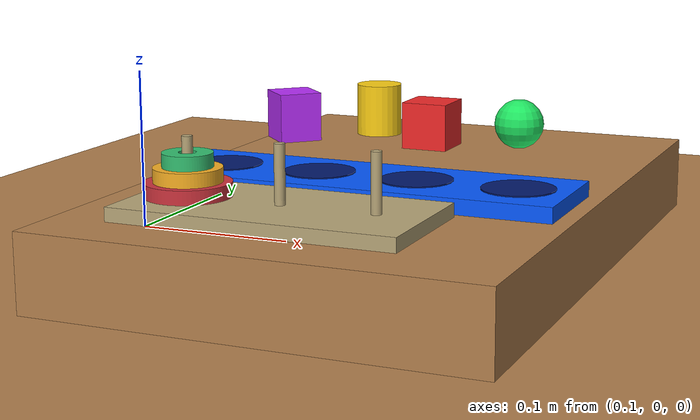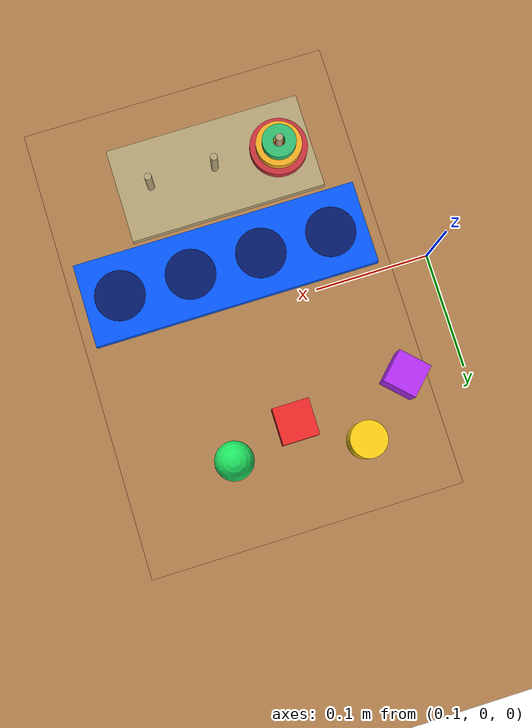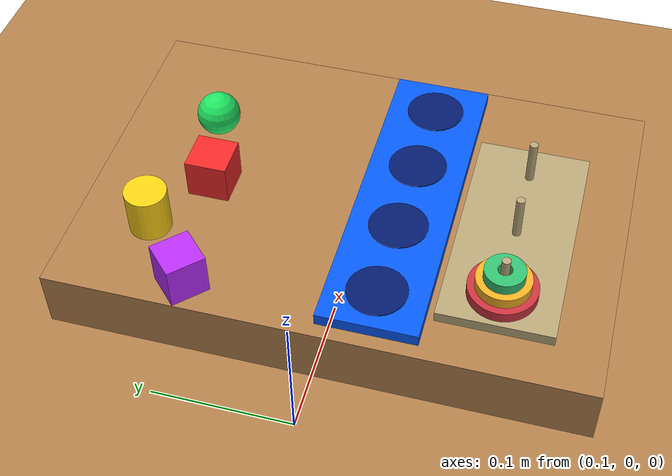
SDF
<?xml version="1.0"?>
<sdf version="1.6">
  <world name="scara_world">
    <gravity>0 0 -9.81</gravity>
    <physics name="ode" type="ode">
      <max_step_size>0.001</max_step_size>
      <real_time_update_rate>1000</real_time_update_rate>
    </physics>
    <scene>
      <ambient>0.62 0.62 0.62 1</ambient>
      <background>0.75 0.75 0.75 1</background>
      <shadows>true</shadows>
    </scene>

    <light name="sun" type="directional">
      <pose>0 0 5 0 0 0</pose>
      <diffuse>0.65 0.65 0.65 1</diffuse>
      <direction>-0.3 -0.4 -1</direction>
    </light>
    <model name="ground">
      <static>true</static>
      <link name="ground_link">
        <collision name="ground_collision">
          <geometry>
            <plane>
              <normal>0 0 1</normal>
              <size>10 10</size>
            </plane>
          </geometry>
        </collision>
        <visual name="ground_visual">
          <geometry>
            <plane>
              <normal>0 0 1</normal>
              <size>10 10</size>
            </plane>
          </geometry>
          <material>
            <ambient>0.63 0.36 0.16 1</ambient>
            <diffuse>0.78 0.50 0.24 1</diffuse>
            <script>
              <uri>file://media/materials/scripts/gazebo.material</uri>
              <name>Gazebo/Wood</name>
            </script>
          </material>
        </visual>
      </link>
    </model>
    <gui>
      <camera name="user_camera">
        <pose>1.0 -1.0 0.8 0 0.35 2.4</pose>
      </camera>
    </gui>
    <model name="work_surface">
      <static>true</static>
      <pose>0.27 0 0.0225 0 0 0</pose>
      <link name="body">
        <collision name="collision_0">
          <pose>0 0 0 0 0 0</pose>
          <geometry>
            <box>
              <size>0.26 0.38 0.045</size>
            </box>
          </geometry>
          <surface>
            <friction>
              <ode>
                <mu>0.8</mu>
                <mu2>0.8</mu2>
              </ode>
            </friction>
          </surface>
        </collision>
        <visual name="visual_0">
          <pose>0 0 0 0 0 0</pose>
          <geometry>
            <box>
              <size>0.26 0.38 0.045</size>
            </box>
          </geometry>
          <material>
            <ambient>0.63 0.36 0.16 1</ambient>
            <diffuse>0.78 0.50 0.24 1</diffuse>
            <script>
              <uri>file://media/materials/scripts/gazebo.material</uri>
              <name>Gazebo/Wood</name>
            </script>
          </material>
        </visual>
      </link>
    </model>
    <model name="pickup_cube">
      <static>false</static>
      <pose>0.255 0.105 0.06 0 0 0</pose>
      <link name="body">
        <inertial>
          <mass>0.025</mass>
          <inertia>
            <ixx>3.75e-06</ixx>
            <iyy>3.75e-06</iyy>
            <izz>3.75e-06</izz>
            <ixy>0</ixy>
            <ixz>0</ixz>
            <iyz>0</iyz>
          </inertia>
        </inertial>
        <collision name="collision_0">
          <pose>0 0 0 0 0 0</pose>
          <geometry>
            <box>
              <size>0.03 0.03 0.03</size>
            </box>
          </geometry>
          <surface>
            <friction>
              <ode>
                <mu>0.8</mu>
                <mu2>0.8</mu2>
              </ode>
            </friction>
          </surface>
        </collision>
        <visual name="visual_0">
          <pose>0 0 0 0 0 0</pose>
          <geometry>
            <box>
              <size>0.03 0.03 0.03</size>
            </box>
          </geometry>
          <material>
            <ambient>0.85 0.12 0.12 1</ambient>
            <diffuse>0.95 0.16 0.16 1</diffuse>
          </material>
        </visual>
      </link>
    </model>
    <model name="pickup_sphere">
      <static>false</static>
      <pose>0.31 0.12 0.061 0 0 0</pose>
      <link name="body">
        <inertial>
          <mass>0.02</mass>
          <inertia>
            <ixx>2.048e-06</ixx>
            <iyy>2.048e-06</iyy>
            <izz>2.048e-06</izz>
            <ixy>0</ixy>
            <ixz>0</ixz>
            <iyz>0</iyz>
          </inertia>
        </inertial>
        <collision name="collision_0">
          <pose>0 0 0 0 0 0</pose>
          <geometry>
            <sphere>
              <radius>0.016</radius>
            </sphere>
          </geometry>
          <surface>
            <friction>
              <ode>
                <mu>0.8</mu>
                <mu2>0.8</mu2>
              </ode>
            </friction>
          </surface>
        </collision>
        <visual name="visual_0">
          <pose>0 0 0 0 0 0</pose>
          <geometry>
            <sphere>
              <radius>0.016</radius>
            </sphere>
          </geometry>
          <material>
            <ambient>0.10 0.72 0.30 1</ambient>
            <diffuse>0.12 0.90 0.38 1</diffuse>
          </material>
        </visual>
      </link>
    </model>
    <model name="hanoi_stand">
      <static>true</static>
      <pose>0.255 -0.115 0.049 0 0 0</pose>
      <link name="body">
        <collision name="collision_0">
          <pose>0 0 0 0 0 0</pose>
          <geometry>
            <box>
              <size>0.165 0.08 0.008</size>
            </box>
          </geometry>
          <surface>
            <friction>
              <ode>
                <mu>0.8</mu>
                <mu2>0.8</mu2>
              </ode>
            </friction>
          </surface>
        </collision>
        <collision name="collision_1">
          <pose>-0.055 0 0.0205 0 0 0</pose>
          <geometry>
            <cylinder>
              <radius>0.003</radius>
              <length>0.033</length>
            </cylinder>
          </geometry>
          <surface>
            <friction>
              <ode>
                <mu>0.8</mu>
                <mu2>0.8</mu2>
              </ode>
            </friction>
          </surface>
        </collision>
        <collision name="collision_2">
          <pose>0 0 0.0205 0 0 0</pose>
          <geometry>
            <cylinder>
              <radius>0.003</radius>
              <length>0.033</length>
            </cylinder>
          </geometry>
          <surface>
            <friction>
              <ode>
                <mu>0.8</mu>
                <mu2>0.8</mu2>
              </ode>
            </friction>
          </surface>
        </collision>
        <collision name="collision_3">
          <pose>0.055 0 0.0205 0 0 0</pose>
          <geometry>
            <cylinder>
              <radius>0.003</radius>
              <length>0.033</length>
            </cylinder>
          </geometry>
          <surface>
            <friction>
              <ode>
                <mu>0.8</mu>
                <mu2>0.8</mu2>
              </ode>
            </friction>
          </surface>
        </collision>
        <visual name="visual_0">
          <pose>0 0 0 0 0 0</pose>
          <geometry>
            <box>
              <size>0.165 0.08 0.008</size>
            </box>
          </geometry>
          <material>
            <ambient>0.72 0.65 0.47 1</ambient>
            <diffuse>0.72 0.65 0.47 1</diffuse>
          </material>
        </visual>
        <visual name="visual_1">
          <pose>-0.055 0 0.0205 0 0 0</pose>
          <geometry>
            <cylinder>
              <radius>0.003</radius>
              <length>0.033</length>
            </cylinder>
          </geometry>
          <material>
            <ambient>0.72 0.65 0.47 1</ambient>
            <diffuse>0.72 0.65 0.47 1</diffuse>
          </material>
        </visual>
        <visual name="visual_2">
          <pose>0 0 0.0205 0 0 0</pose>
          <geometry>
            <cylinder>
              <radius>0.003</radius>
              <length>0.033</length>
            </cylinder>
          </geometry>
          <material>
            <ambient>0.72 0.65 0.47 1</ambient>
            <diffuse>0.72 0.65 0.47 1</diffuse>
          </material>
        </visual>
        <visual name="visual_3">
          <pose>0.055 0 0.0205 0 0 0</pose>
          <geometry>
            <cylinder>
              <radius>0.003</radius>
              <length>0.033</length>
            </cylinder>
          </geometry>
          <material>
            <ambient>0.72 0.65 0.47 1</ambient>
            <diffuse>0.72 0.65 0.47 1</diffuse>
          </material>
        </visual>
      </link>
    </model>
    <model name="hanoi_ring_large">
      <static>false</static>
      <pose>0.2 -0.115 0.057 0 0 0</pose>
      <link name="body">
        <inertial>
          <mass>0.02</mass>
          <inertia>
            <ixx>3.1116666666666664e-06</ixx>
            <iyy>3.1116666666666664e-06</iyy>
            <izz>6.01e-06</izz>
            <ixy>0</ixy>
            <ixz>0</ixz>
            <iyz>0</iyz>
          </inertia>
        </inertial>
        <collision name="collision_0">
          <pose>0.0145 0.0 0 0 0 0.0</pose>
          <geometry>
            <box>
              <size>0.019 0.0063193198841950005 0.008</size>
            </box>
          </geometry>
          <surface>
            <friction>
              <ode>
                <mu>0.8</mu>
                <mu2>0.8</mu2>
              </ode>
            </friction>
          </surface>
        </collision>
        <collision name="collision_1">
          <pose>0.01400592448119149 0.003752876153986551 0 0 0 0.2617993877991494</pose>
          <geometry>
            <box>
              <size>0.019 0.0063193198841950005 0.008</size>
            </box>
          </geometry>
          <surface>
            <friction>
              <ode>
                <mu>0.8</mu>
                <mu2>0.8</mu2>
              </ode>
            </friction>
          </surface>
        </collision>
        <collision name="collision_2">
          <pose>0.012557368354874362 0.0072499999999999995 0 0 0 0.5235987755982988</pose>
          <geometry>
            <box>
              <size>0.019 0.0063193198841950005 0.008</size>
            </box>
          </geometry>
          <surface>
            <friction>
              <ode>
                <mu>0.8</mu>
                <mu2>0.8</mu2>
              </ode>
            </friction>
          </surface>
        </collision>
        <collision name="collision_3">
          <pose>0.010253048327204941 0.01025304832720494 0 0 0 0.7853981633974483</pose>
          <geometry>
            <box>
              <size>0.019 0.0063193198841950005 0.008</size>
            </box>
          </geometry>
          <surface>
            <friction>
              <ode>
                <mu>0.8</mu>
                <mu2>0.8</mu2>
              </ode>
            </friction>
          </surface>
        </collision>
        <collision name="collision_4">
          <pose>0.007250000000000002 0.01255736835487436 0 0 0 1.0471975511965976</pose>
          <geometry>
            <box>
              <size>0.019 0.0063193198841950005 0.008</size>
            </box>
          </geometry>
          <surface>
            <friction>
              <ode>
                <mu>0.8</mu>
                <mu2>0.8</mu2>
              </ode>
            </friction>
          </surface>
        </collision>
        <collision name="collision_5">
          <pose>0.003752876153986551 0.01400592448119149 0 0 0 1.3089969389957472</pose>
          <geometry>
            <box>
              <size>0.019 0.0063193198841950005 0.008</size>
            </box>
          </geometry>
          <surface>
            <friction>
              <ode>
                <mu>0.8</mu>
                <mu2>0.8</mu2>
              </ode>
            </friction>
          </surface>
        </collision>
        <collision name="collision_6">
          <pose>8.87868929381831e-19 0.0145 0 0 0 1.5707963267948966</pose>
          <geometry>
            <box>
              <size>0.019 0.0063193198841950005 0.008</size>
            </box>
          </geometry>
          <surface>
            <friction>
              <ode>
                <mu>0.8</mu>
                <mu2>0.8</mu2>
              </ode>
            </friction>
          </surface>
        </collision>
        <collision name="collision_7">
          <pose>-0.0037528761539865492 0.01400592448119149 0 0 0 1.832595714594046</pose>
          <geometry>
            <box>
              <size>0.019 0.0063193198841950005 0.008</size>
            </box>
          </geometry>
          <surface>
            <friction>
              <ode>
                <mu>0.8</mu>
                <mu2>0.8</mu2>
              </ode>
            </friction>
          </surface>
        </collision>
        <collision name="collision_8">
          <pose>-0.007249999999999997 0.012557368354874362 0 0 0 2.0943951023931953</pose>
          <geometry>
            <box>
              <size>0.019 0.0063193198841950005 0.008</size>
            </box>
          </geometry>
          <surface>
            <friction>
              <ode>
                <mu>0.8</mu>
                <mu2>0.8</mu2>
              </ode>
            </friction>
          </surface>
        </collision>
        <collision name="collision_9">
          <pose>-0.01025304832720494 0.010253048327204941 0 0 0 2.356194490192345</pose>
          <geometry>
            <box>
              <size>0.019 0.0063193198841950005 0.008</size>
            </box>
          </geometry>
          <surface>
            <friction>
              <ode>
                <mu>0.8</mu>
                <mu2>0.8</mu2>
              </ode>
            </friction>
          </surface>
        </collision>
        <collision name="collision_10">
          <pose>-0.012557368354874362 0.0072499999999999995 0 0 0 2.6179938779914944</pose>
          <geometry>
            <box>
              <size>0.019 0.0063193198841950005 0.008</size>
            </box>
          </geometry>
          <surface>
            <friction>
              <ode>
                <mu>0.8</mu>
                <mu2>0.8</mu2>
              </ode>
            </friction>
          </surface>
        </collision>
        <collision name="collision_11">
          <pose>-0.014005924481191489 0.003752876153986555 0 0 0 2.8797932657906435</pose>
          <geometry>
            <box>
              <size>0.019 0.0063193198841950005 0.008</size>
            </box>
          </geometry>
          <surface>
            <friction>
              <ode>
                <mu>0.8</mu>
                <mu2>0.8</mu2>
              </ode>
            </friction>
          </surface>
        </collision>
        <collision name="collision_12">
          <pose>-0.0145 1.775737858763662e-18 0 0 0 3.141592653589793</pose>
          <geometry>
            <box>
              <size>0.019 0.0063193198841950005 0.008</size>
            </box>
          </geometry>
          <surface>
            <friction>
              <ode>
                <mu>0.8</mu>
                <mu2>0.8</mu2>
              </ode>
            </friction>
          </surface>
        </collision>
        <collision name="collision_13">
          <pose>-0.01400592448119149 -0.003752876153986552 0 0 0 3.4033920413889427</pose>
          <geometry>
            <box>
              <size>0.019 0.0063193198841950005 0.008</size>
            </box>
          </geometry>
          <surface>
            <friction>
              <ode>
                <mu>0.8</mu>
                <mu2>0.8</mu2>
              </ode>
            </friction>
          </surface>
        </collision>
        <collision name="collision_14">
          <pose>-0.012557368354874364 -0.007249999999999996 0 0 0 3.665191429188092</pose>
          <geometry>
            <box>
              <size>0.019 0.0063193198841950005 0.008</size>
            </box>
          </geometry>
          <surface>
            <friction>
              <ode>
                <mu>0.8</mu>
                <mu2>0.8</mu2>
              </ode>
            </friction>
          </surface>
        </collision>
        <collision name="collision_15">
          <pose>-0.010253048327204944 -0.010253048327204934 0 0 0 3.926990816987241</pose>
          <geometry>
            <box>
              <size>0.019 0.0063193198841950005 0.008</size>
            </box>
          </geometry>
          <surface>
            <friction>
              <ode>
                <mu>0.8</mu>
                <mu2>0.8</mu2>
              </ode>
            </friction>
          </surface>
        </collision>
        <collision name="collision_16">
          <pose>-0.0072500000000000064 -0.012557368354874357 0 0 0 4.1887902047863905</pose>
          <geometry>
            <box>
              <size>0.019 0.0063193198841950005 0.008</size>
            </box>
          </geometry>
          <surface>
            <friction>
              <ode>
                <mu>0.8</mu>
                <mu2>0.8</mu2>
              </ode>
            </friction>
          </surface>
        </collision>
        <collision name="collision_17">
          <pose>-0.0037528761539865492 -0.01400592448119149 0 0 0 4.4505895925855405</pose>
          <geometry>
            <box>
              <size>0.019 0.0063193198841950005 0.008</size>
            </box>
          </geometry>
          <surface>
            <friction>
              <ode>
                <mu>0.8</mu>
                <mu2>0.8</mu2>
              </ode>
            </friction>
          </surface>
        </collision>
        <collision name="collision_18">
          <pose>-2.663606788145493e-18 -0.0145 0 0 0 4.71238898038469</pose>
          <geometry>
            <box>
              <size>0.019 0.0063193198841950005 0.008</size>
            </box>
          </geometry>
          <surface>
            <friction>
              <ode>
                <mu>0.8</mu>
                <mu2>0.8</mu2>
              </ode>
            </friction>
          </surface>
        </collision>
        <collision name="collision_19">
          <pose>0.0037528761539865445 -0.014005924481191492 0 0 0 4.974188368183839</pose>
          <geometry>
            <box>
              <size>0.019 0.0063193198841950005 0.008</size>
            </box>
          </geometry>
          <surface>
            <friction>
              <ode>
                <mu>0.8</mu>
                <mu2>0.8</mu2>
              </ode>
            </friction>
          </surface>
        </collision>
        <collision name="collision_20">
          <pose>0.007250000000000002 -0.01255736835487436 0 0 0 5.235987755982989</pose>
          <geometry>
            <box>
              <size>0.019 0.0063193198841950005 0.008</size>
            </box>
          </geometry>
          <surface>
            <friction>
              <ode>
                <mu>0.8</mu>
                <mu2>0.8</mu2>
              </ode>
            </friction>
          </surface>
        </collision>
        <collision name="collision_21">
          <pose>0.010253048327204937 -0.010253048327204943 0 0 0 5.497787143782138</pose>
          <geometry>
            <box>
              <size>0.019 0.0063193198841950005 0.008</size>
            </box>
          </geometry>
          <surface>
            <friction>
              <ode>
                <mu>0.8</mu>
                <mu2>0.8</mu2>
              </ode>
            </friction>
          </surface>
        </collision>
        <collision name="collision_22">
          <pose>0.012557368354874357 -0.0072500000000000064 0 0 0 5.759586531581287</pose>
          <geometry>
            <box>
              <size>0.019 0.0063193198841950005 0.008</size>
            </box>
          </geometry>
          <surface>
            <friction>
              <ode>
                <mu>0.8</mu>
                <mu2>0.8</mu2>
              </ode>
            </friction>
          </surface>
        </collision>
        <collision name="collision_23">
          <pose>0.014005924481191487 -0.003752876153986563 0 0 0 6.021385919380436</pose>
          <geometry>
            <box>
              <size>0.019 0.0063193198841950005 0.008</size>
            </box>
          </geometry>
          <surface>
            <friction>
              <ode>
                <mu>0.8</mu>
                <mu2>0.8</mu2>
              </ode>
            </friction>
          </surface>
        </collision>
        <visual name="ring_visual">
          <geometry>
            <mesh>
              <uri>model://hanoi_ring_large/meshes/ring.stl</uri>
            </mesh>
          </geometry>
          <material>
            <ambient>0.8 0.2 0.24 1</ambient>
            <diffuse>0.8 0.2 0.24 1</diffuse>
          </material>
        </visual>
      </link>
    </model>
    <model name="hanoi_ring_medium">
      <static>false</static>
      <pose>0.2 -0.115 0.065 0 0 0</pose>
      <link name="body">
        <inertial>
          <mass>0.014</mass>
          <inertia>
            <ixx>1.4256666666666666e-06</ixx>
            <iyy>1.4256666666666666e-06</iyy>
            <izz>2.702e-06</izz>
            <ixy>0</ixy>
            <ixz>0</ixz>
            <iyz>0</iyz>
          </inertia>
        </inertial>
        <collision name="collision_0">
          <pose>0.012 0.0 0 0 0 0.0</pose>
          <geometry>
            <box>
              <size>0.013999999999999999 0.005002794908321041 0.008</size>
            </box>
          </geometry>
          <surface>
            <friction>
              <ode>
                <mu>0.8</mu>
                <mu2>0.8</mu2>
              </ode>
            </friction>
          </surface>
        </collision>
        <collision name="collision_1">
          <pose>0.01159110991546882 0.003105828541230249 0 0 0 0.2617993877991494</pose>
          <geometry>
            <box>
              <size>0.013999999999999999 0.005002794908321041 0.008</size>
            </box>
          </geometry>
          <surface>
            <friction>
              <ode>
                <mu>0.8</mu>
                <mu2>0.8</mu2>
              </ode>
            </friction>
          </surface>
        </collision>
        <collision name="collision_2">
          <pose>0.010392304845413265 0.005999999999999999 0 0 0 0.5235987755982988</pose>
          <geometry>
            <box>
              <size>0.013999999999999999 0.005002794908321041 0.008</size>
            </box>
          </geometry>
          <surface>
            <friction>
              <ode>
                <mu>0.8</mu>
                <mu2>0.8</mu2>
              </ode>
            </friction>
          </surface>
        </collision>
        <collision name="collision_3">
          <pose>0.008485281374238571 0.00848528137423857 0 0 0 0.7853981633974483</pose>
          <geometry>
            <box>
              <size>0.013999999999999999 0.005002794908321041 0.008</size>
            </box>
          </geometry>
          <surface>
            <friction>
              <ode>
                <mu>0.8</mu>
                <mu2>0.8</mu2>
              </ode>
            </friction>
          </surface>
        </collision>
        <collision name="collision_4">
          <pose>0.006000000000000002 0.010392304845413263 0 0 0 1.0471975511965976</pose>
          <geometry>
            <box>
              <size>0.013999999999999999 0.005002794908321041 0.008</size>
            </box>
          </geometry>
          <surface>
            <friction>
              <ode>
                <mu>0.8</mu>
                <mu2>0.8</mu2>
              </ode>
            </friction>
          </surface>
        </collision>
        <collision name="collision_5">
          <pose>0.003105828541230249 0.01159110991546882 0 0 0 1.3089969389957472</pose>
          <geometry>
            <box>
              <size>0.013999999999999999 0.005002794908321041 0.008</size>
            </box>
          </geometry>
          <surface>
            <friction>
              <ode>
                <mu>0.8</mu>
                <mu2>0.8</mu2>
              </ode>
            </friction>
          </surface>
        </collision>
        <collision name="collision_6">
          <pose>7.347880794884119e-19 0.012 0 0 0 1.5707963267948966</pose>
          <geometry>
            <box>
              <size>0.013999999999999999 0.005002794908321041 0.008</size>
            </box>
          </geometry>
          <surface>
            <friction>
              <ode>
                <mu>0.8</mu>
                <mu2>0.8</mu2>
              </ode>
            </friction>
          </surface>
        </collision>
        <collision name="collision_7">
          <pose>-0.0031058285412302474 0.01159110991546882 0 0 0 1.832595714594046</pose>
          <geometry>
            <box>
              <size>0.013999999999999999 0.005002794908321041 0.008</size>
            </box>
          </geometry>
          <surface>
            <friction>
              <ode>
                <mu>0.8</mu>
                <mu2>0.8</mu2>
              </ode>
            </friction>
          </surface>
        </collision>
        <collision name="collision_8">
          <pose>-0.0059999999999999975 0.010392304845413265 0 0 0 2.0943951023931953</pose>
          <geometry>
            <box>
              <size>0.013999999999999999 0.005002794908321041 0.008</size>
            </box>
          </geometry>
          <surface>
            <friction>
              <ode>
                <mu>0.8</mu>
                <mu2>0.8</mu2>
              </ode>
            </friction>
          </surface>
        </collision>
        <collision name="collision_9">
          <pose>-0.00848528137423857 0.008485281374238571 0 0 0 2.356194490192345</pose>
          <geometry>
            <box>
              <size>0.013999999999999999 0.005002794908321041 0.008</size>
            </box>
          </geometry>
          <surface>
            <friction>
              <ode>
                <mu>0.8</mu>
                <mu2>0.8</mu2>
              </ode>
            </friction>
          </surface>
        </collision>
        <collision name="collision_10">
          <pose>-0.010392304845413265 0.005999999999999999 0 0 0 2.6179938779914944</pose>
          <geometry>
            <box>
              <size>0.013999999999999999 0.005002794908321041 0.008</size>
            </box>
          </geometry>
          <surface>
            <friction>
              <ode>
                <mu>0.8</mu>
                <mu2>0.8</mu2>
              </ode>
            </friction>
          </surface>
        </collision>
        <collision name="collision_11">
          <pose>-0.01159110991546882 0.003105828541230252 0 0 0 2.8797932657906435</pose>
          <geometry>
            <box>
              <size>0.013999999999999999 0.005002794908321041 0.008</size>
            </box>
          </geometry>
          <surface>
            <friction>
              <ode>
                <mu>0.8</mu>
                <mu2>0.8</mu2>
              </ode>
            </friction>
          </surface>
        </collision>
        <collision name="collision_12">
          <pose>-0.012 1.4695761589768239e-18 0 0 0 3.141592653589793</pose>
          <geometry>
            <box>
              <size>0.013999999999999999 0.005002794908321041 0.008</size>
            </box>
          </geometry>
          <surface>
            <friction>
              <ode>
                <mu>0.8</mu>
                <mu2>0.8</mu2>
              </ode>
            </friction>
          </surface>
        </collision>
        <collision name="collision_13">
          <pose>-0.01159110991546882 -0.0031058285412302496 0 0 0 3.4033920413889427</pose>
          <geometry>
            <box>
              <size>0.013999999999999999 0.005002794908321041 0.008</size>
            </box>
          </geometry>
          <surface>
            <friction>
              <ode>
                <mu>0.8</mu>
                <mu2>0.8</mu2>
              </ode>
            </friction>
          </surface>
        </collision>
        <collision name="collision_14">
          <pose>-0.010392304845413265 -0.005999999999999997 0 0 0 3.665191429188092</pose>
          <geometry>
            <box>
              <size>0.013999999999999999 0.005002794908321041 0.008</size>
            </box>
          </geometry>
          <surface>
            <friction>
              <ode>
                <mu>0.8</mu>
                <mu2>0.8</mu2>
              </ode>
            </friction>
          </surface>
        </collision>
        <collision name="collision_15">
          <pose>-0.008485281374238575 -0.008485281374238566 0 0 0 3.926990816987241</pose>
          <geometry>
            <box>
              <size>0.013999999999999999 0.005002794908321041 0.008</size>
            </box>
          </geometry>
          <surface>
            <friction>
              <ode>
                <mu>0.8</mu>
                <mu2>0.8</mu2>
              </ode>
            </friction>
          </surface>
        </collision>
        <collision name="collision_16">
          <pose>-0.006000000000000005 -0.01039230484541326 0 0 0 4.1887902047863905</pose>
          <geometry>
            <box>
              <size>0.013999999999999999 0.005002794908321041 0.008</size>
            </box>
          </geometry>
          <surface>
            <friction>
              <ode>
                <mu>0.8</mu>
                <mu2>0.8</mu2>
              </ode>
            </friction>
          </surface>
        </collision>
        <collision name="collision_17">
          <pose>-0.0031058285412302474 -0.01159110991546882 0 0 0 4.4505895925855405</pose>
          <geometry>
            <box>
              <size>0.013999999999999999 0.005002794908321041 0.008</size>
            </box>
          </geometry>
          <surface>
            <friction>
              <ode>
                <mu>0.8</mu>
                <mu2>0.8</mu2>
              </ode>
            </friction>
          </surface>
        </collision>
        <collision name="collision_18">
          <pose>-2.2043642384652355e-18 -0.012 0 0 0 4.71238898038469</pose>
          <geometry>
            <box>
              <size>0.013999999999999999 0.005002794908321041 0.008</size>
            </box>
          </geometry>
          <surface>
            <friction>
              <ode>
                <mu>0.8</mu>
                <mu2>0.8</mu2>
              </ode>
            </friction>
          </surface>
        </collision>
        <collision name="collision_19">
          <pose>0.0031058285412302435 -0.011591109915468821 0 0 0 4.974188368183839</pose>
          <geometry>
            <box>
              <size>0.013999999999999999 0.005002794908321041 0.008</size>
            </box>
          </geometry>
          <surface>
            <friction>
              <ode>
                <mu>0.8</mu>
                <mu2>0.8</mu2>
              </ode>
            </friction>
          </surface>
        </collision>
        <collision name="collision_20">
          <pose>0.006000000000000002 -0.010392304845413263 0 0 0 5.235987755982989</pose>
          <geometry>
            <box>
              <size>0.013999999999999999 0.005002794908321041 0.008</size>
            </box>
          </geometry>
          <surface>
            <friction>
              <ode>
                <mu>0.8</mu>
                <mu2>0.8</mu2>
              </ode>
            </friction>
          </surface>
        </collision>
        <collision name="collision_21">
          <pose>0.008485281374238568 -0.008485281374238573 0 0 0 5.497787143782138</pose>
          <geometry>
            <box>
              <size>0.013999999999999999 0.005002794908321041 0.008</size>
            </box>
          </geometry>
          <surface>
            <friction>
              <ode>
                <mu>0.8</mu>
                <mu2>0.8</mu2>
              </ode>
            </friction>
          </surface>
        </collision>
        <collision name="collision_22">
          <pose>0.01039230484541326 -0.006000000000000005 0 0 0 5.759586531581287</pose>
          <geometry>
            <box>
              <size>0.013999999999999999 0.005002794908321041 0.008</size>
            </box>
          </geometry>
          <surface>
            <friction>
              <ode>
                <mu>0.8</mu>
                <mu2>0.8</mu2>
              </ode>
            </friction>
          </surface>
        </collision>
        <collision name="collision_23">
          <pose>0.011591109915468818 -0.003105828541230259 0 0 0 6.021385919380436</pose>
          <geometry>
            <box>
              <size>0.013999999999999999 0.005002794908321041 0.008</size>
            </box>
          </geometry>
          <surface>
            <friction>
              <ode>
                <mu>0.8</mu>
                <mu2>0.8</mu2>
              </ode>
            </friction>
          </surface>
        </collision>
        <visual name="ring_visual">
          <geometry>
            <mesh>
              <uri>model://hanoi_ring_medium/meshes/ring.stl</uri>
            </mesh>
          </geometry>
          <material>
            <ambient>0.97 0.69 0.14 1</ambient>
            <diffuse>0.97 0.69 0.14 1</diffuse>
          </material>
        </visual>
      </link>
    </model>
    <model name="hanoi_ring_small">
      <static>false</static>
      <pose>0.2 -0.115 0.073 0 0 0</pose>
      <link name="body">
        <inertial>
          <mass>0.009</mass>
          <inertia>
            <ixx>5.452500000000001e-07</ixx>
            <iyy>5.452500000000001e-07</iyy>
            <izz>9.945e-07</izz>
            <ixy>0</ixy>
            <ixz>0</ixz>
            <iyz>0</iyz>
          </inertia>
        </inertial>
        <collision name="collision_0">
          <pose>0.0095 0.0 0 0 0 0.0</pose>
          <geometry>
            <box>
              <size>0.009000000000000001 0.0036862699324470834 0.008</size>
            </box>
          </geometry>
          <surface>
            <friction>
              <ode>
                <mu>0.8</mu>
                <mu2>0.8</mu2>
              </ode>
            </friction>
          </surface>
        </collision>
        <collision name="collision_1">
          <pose>0.009176295349746148 0.002458780928473947 0 0 0 0.2617993877991494</pose>
          <geometry>
            <box>
              <size>0.009000000000000001 0.0036862699324470834 0.008</size>
            </box>
          </geometry>
          <surface>
            <friction>
              <ode>
                <mu>0.8</mu>
                <mu2>0.8</mu2>
              </ode>
            </friction>
          </surface>
        </collision>
        <collision name="collision_2">
          <pose>0.008227241335952167 0.004749999999999999 0 0 0 0.5235987755982988</pose>
          <geometry>
            <box>
              <size>0.009000000000000001 0.0036862699324470834 0.008</size>
            </box>
          </geometry>
          <surface>
            <friction>
              <ode>
                <mu>0.8</mu>
                <mu2>0.8</mu2>
              </ode>
            </friction>
          </surface>
        </collision>
        <collision name="collision_3">
          <pose>0.006717514421272202 0.006717514421272201 0 0 0 0.7853981633974483</pose>
          <geometry>
            <box>
              <size>0.009000000000000001 0.0036862699324470834 0.008</size>
            </box>
          </geometry>
          <surface>
            <friction>
              <ode>
                <mu>0.8</mu>
                <mu2>0.8</mu2>
              </ode>
            </friction>
          </surface>
        </collision>
        <collision name="collision_4">
          <pose>0.004750000000000001 0.008227241335952167 0 0 0 1.0471975511965976</pose>
          <geometry>
            <box>
              <size>0.009000000000000001 0.0036862699324470834 0.008</size>
            </box>
          </geometry>
          <surface>
            <friction>
              <ode>
                <mu>0.8</mu>
                <mu2>0.8</mu2>
              </ode>
            </friction>
          </surface>
        </collision>
        <collision name="collision_5">
          <pose>0.002458780928473947 0.009176295349746148 0 0 0 1.3089969389957472</pose>
          <geometry>
            <box>
              <size>0.009000000000000001 0.0036862699324470834 0.008</size>
            </box>
          </geometry>
          <surface>
            <friction>
              <ode>
                <mu>0.8</mu>
                <mu2>0.8</mu2>
              </ode>
            </friction>
          </surface>
        </collision>
        <collision name="collision_6">
          <pose>5.817072295949927e-19 0.0095 0 0 0 1.5707963267948966</pose>
          <geometry>
            <box>
              <size>0.009000000000000001 0.0036862699324470834 0.008</size>
            </box>
          </geometry>
          <surface>
            <friction>
              <ode>
                <mu>0.8</mu>
                <mu2>0.8</mu2>
              </ode>
            </friction>
          </surface>
        </collision>
        <collision name="collision_7">
          <pose>-0.002458780928473946 0.009176295349746148 0 0 0 1.832595714594046</pose>
          <geometry>
            <box>
              <size>0.009000000000000001 0.0036862699324470834 0.008</size>
            </box>
          </geometry>
          <surface>
            <friction>
              <ode>
                <mu>0.8</mu>
                <mu2>0.8</mu2>
              </ode>
            </friction>
          </surface>
        </collision>
        <collision name="collision_8">
          <pose>-0.004749999999999998 0.008227241335952167 0 0 0 2.0943951023931953</pose>
          <geometry>
            <box>
              <size>0.009000000000000001 0.0036862699324470834 0.008</size>
            </box>
          </geometry>
          <surface>
            <friction>
              <ode>
                <mu>0.8</mu>
                <mu2>0.8</mu2>
              </ode>
            </friction>
          </surface>
        </collision>
        <collision name="collision_9">
          <pose>-0.006717514421272201 0.006717514421272202 0 0 0 2.356194490192345</pose>
          <geometry>
            <box>
              <size>0.009000000000000001 0.0036862699324470834 0.008</size>
            </box>
          </geometry>
          <surface>
            <friction>
              <ode>
                <mu>0.8</mu>
                <mu2>0.8</mu2>
              </ode>
            </friction>
          </surface>
        </collision>
        <collision name="collision_10">
          <pose>-0.008227241335952167 0.004749999999999999 0 0 0 2.6179938779914944</pose>
          <geometry>
            <box>
              <size>0.009000000000000001 0.0036862699324470834 0.008</size>
            </box>
          </geometry>
          <surface>
            <friction>
              <ode>
                <mu>0.8</mu>
                <mu2>0.8</mu2>
              </ode>
            </friction>
          </surface>
        </collision>
        <collision name="collision_11">
          <pose>-0.009176295349746148 0.0024587809284739495 0 0 0 2.8797932657906435</pose>
          <geometry>
            <box>
              <size>0.009000000000000001 0.0036862699324470834 0.008</size>
            </box>
          </geometry>
          <surface>
            <friction>
              <ode>
                <mu>0.8</mu>
                <mu2>0.8</mu2>
              </ode>
            </friction>
          </surface>
        </collision>
        <collision name="collision_12">
          <pose>-0.0095 1.1634144591899855e-18 0 0 0 3.141592653589793</pose>
          <geometry>
            <box>
              <size>0.009000000000000001 0.0036862699324470834 0.008</size>
            </box>
          </geometry>
          <surface>
            <friction>
              <ode>
                <mu>0.8</mu>
                <mu2>0.8</mu2>
              </ode>
            </friction>
          </surface>
        </collision>
        <collision name="collision_13">
          <pose>-0.009176295349746148 -0.0024587809284739473 0 0 0 3.4033920413889427</pose>
          <geometry>
            <box>
              <size>0.009000000000000001 0.0036862699324470834 0.008</size>
            </box>
          </geometry>
          <surface>
            <friction>
              <ode>
                <mu>0.8</mu>
                <mu2>0.8</mu2>
              </ode>
            </friction>
          </surface>
        </collision>
        <collision name="collision_14">
          <pose>-0.008227241335952169 -0.004749999999999997 0 0 0 3.665191429188092</pose>
          <geometry>
            <box>
              <size>0.009000000000000001 0.0036862699324470834 0.008</size>
            </box>
          </geometry>
          <surface>
            <friction>
              <ode>
                <mu>0.8</mu>
                <mu2>0.8</mu2>
              </ode>
            </friction>
          </surface>
        </collision>
        <collision name="collision_15">
          <pose>-0.006717514421272205 -0.006717514421272198 0 0 0 3.926990816987241</pose>
          <geometry>
            <box>
              <size>0.009000000000000001 0.0036862699324470834 0.008</size>
            </box>
          </geometry>
          <surface>
            <friction>
              <ode>
                <mu>0.8</mu>
                <mu2>0.8</mu2>
              </ode>
            </friction>
          </surface>
        </collision>
        <collision name="collision_16">
          <pose>-0.004750000000000004 -0.008227241335952165 0 0 0 4.1887902047863905</pose>
          <geometry>
            <box>
              <size>0.009000000000000001 0.0036862699324470834 0.008</size>
            </box>
          </geometry>
          <surface>
            <friction>
              <ode>
                <mu>0.8</mu>
                <mu2>0.8</mu2>
              </ode>
            </friction>
          </surface>
        </collision>
        <collision name="collision_17">
          <pose>-0.002458780928473946 -0.009176295349746148 0 0 0 4.4505895925855405</pose>
          <geometry>
            <box>
              <size>0.009000000000000001 0.0036862699324470834 0.008</size>
            </box>
          </geometry>
          <surface>
            <friction>
              <ode>
                <mu>0.8</mu>
                <mu2>0.8</mu2>
              </ode>
            </friction>
          </surface>
        </collision>
        <collision name="collision_18">
          <pose>-1.7451216887849783e-18 -0.0095 0 0 0 4.71238898038469</pose>
          <geometry>
            <box>
              <size>0.009000000000000001 0.0036862699324470834 0.008</size>
            </box>
          </geometry>
          <surface>
            <friction>
              <ode>
                <mu>0.8</mu>
                <mu2>0.8</mu2>
              </ode>
            </friction>
          </surface>
        </collision>
        <collision name="collision_19">
          <pose>0.002458780928473943 -0.00917629534974615 0 0 0 4.974188368183839</pose>
          <geometry>
            <box>
              <size>0.009000000000000001 0.0036862699324470834 0.008</size>
            </box>
          </geometry>
          <surface>
            <friction>
              <ode>
                <mu>0.8</mu>
                <mu2>0.8</mu2>
              </ode>
            </friction>
          </surface>
        </collision>
        <collision name="collision_20">
          <pose>0.004750000000000001 -0.008227241335952167 0 0 0 5.235987755982989</pose>
          <geometry>
            <box>
              <size>0.009000000000000001 0.0036862699324470834 0.008</size>
            </box>
          </geometry>
          <surface>
            <friction>
              <ode>
                <mu>0.8</mu>
                <mu2>0.8</mu2>
              </ode>
            </friction>
          </surface>
        </collision>
        <collision name="collision_21">
          <pose>0.006717514421272199 -0.006717514421272203 0 0 0 5.497787143782138</pose>
          <geometry>
            <box>
              <size>0.009000000000000001 0.0036862699324470834 0.008</size>
            </box>
          </geometry>
          <surface>
            <friction>
              <ode>
                <mu>0.8</mu>
                <mu2>0.8</mu2>
              </ode>
            </friction>
          </surface>
        </collision>
        <collision name="collision_22">
          <pose>0.008227241335952165 -0.004750000000000004 0 0 0 5.759586531581287</pose>
          <geometry>
            <box>
              <size>0.009000000000000001 0.0036862699324470834 0.008</size>
            </box>
          </geometry>
          <surface>
            <friction>
              <ode>
                <mu>0.8</mu>
                <mu2>0.8</mu2>
              </ode>
            </friction>
          </surface>
        </collision>
        <collision name="collision_23">
          <pose>0.009176295349746146 -0.0024587809284739547 0 0 0 6.021385919380436</pose>
          <geometry>
            <box>
              <size>0.009000000000000001 0.0036862699324470834 0.008</size>
            </box>
          </geometry>
          <surface>
            <friction>
              <ode>
                <mu>0.8</mu>
                <mu2>0.8</mu2>
              </ode>
            </friction>
          </surface>
        </collision>
        <visual name="ring_visual">
          <geometry>
            <mesh>
              <uri>model://hanoi_ring_small/meshes/ring.stl</uri>
            </mesh>
          </geometry>
          <material>
            <ambient>0.2 0.75 0.44 1</ambient>
            <diffuse>0.2 0.75 0.44 1</diffuse>
          </material>
        </visual>
      </link>
    </model>
    <model name="placement_tray">
      <static>true</static>
      <pose>0.27 -0.035 0.049 0 0 0</pose>
      <link name="body">
        <collision name="base_collision">
          <pose>0 0 0 0 0 0</pose>
          <geometry>
            <box>
              <size>0.24 0.070 0.010</size>
            </box>
          </geometry>
        </collision>
        <visual name="base_visual">
          <geometry>
            <box>
              <size>0.24 0.070 0.010</size>
            </box>
          </geometry>
          <material>
            <ambient>0.02 0.25 0.85 1</ambient>
            <diffuse>0.02 0.35 1 1</diffuse>
          </material>
        </visual>
        <visual name="station_1">
          <pose>-0.090 0 0.0052 0 0 0</pose>
          <geometry>
            <cylinder>
              <radius>0.021</radius>
              <length>0.001</length>
            </cylinder>
          </geometry>
          <material>
            <ambient>0.01 0.10 0.42 1</ambient>
            <diffuse>0.01 0.10 0.42 1</diffuse>
          </material>
        </visual>
        <visual name="station_2">
          <pose>-0.030 0 0.0052 0 0 0</pose>
          <geometry>
            <cylinder>
              <radius>0.021</radius>
              <length>0.001</length>
            </cylinder>
          </geometry>
          <material>
            <ambient>0.01 0.10 0.42 1</ambient>
            <diffuse>0.01 0.10 0.42 1</diffuse>
          </material>
        </visual>
        <visual name="station_3">
          <pose>0.030 0 0.0052 0 0 0</pose>
          <geometry>
            <cylinder>
              <radius>0.021</radius>
              <length>0.001</length>
            </cylinder>
          </geometry>
          <material>
            <ambient>0.01 0.10 0.42 1</ambient>
            <diffuse>0.01 0.10 0.42 1</diffuse>
          </material>
        </visual>
        <visual name="station_4">
          <pose>0.090 0 0.0052 0 0 0</pose>
          <geometry>
            <cylinder>
              <radius>0.021</radius>
              <length>0.001</length>
            </cylinder>
          </geometry>
          <material>
            <ambient>0.01 0.10 0.42 1</ambient>
            <diffuse>0.01 0.10 0.42 1</diffuse>
          </material>
        </visual>
      </link>
    </model>
    <model name="pickup_cylinder">
      <static>false</static>
      <pose>0.205 0.135 0.062 0 0 0</pose>
      <link name="body">
        <inertial>
          <mass>0.022</mass>
          <inertia>
            <ixx>3.0e-06</ixx>
            <iyy>3.0e-06</iyy>
            <izz>2.0e-06</izz>
            <ixy>0</ixy>
            <ixz>0</ixz>
            <iyz>0</iyz>
          </inertia>
        </inertial>
        <collision name="collision_0">
          <pose>0 0 0 0 0 0</pose>
          <geometry>
            <cylinder>
              <radius>0.015</radius>
              <length>0.034</length>
            </cylinder>
          </geometry>
          <surface>
            <friction>
              <ode>
                <mu>0.9</mu>
                <mu2>0.9</mu2>
              </ode>
            </friction>
          </surface>
        </collision>
        <visual name="visual_0">
          <geometry>
            <cylinder>
              <radius>0.015</radius>
              <length>0.034</length>
            </cylinder>
          </geometry>
          <material>
            <ambient>0.98 0.70 0.04 1</ambient>
            <diffuse>1 0.82 0.08 1</diffuse>
          </material>
        </visual>
      </link>
    </model>
    <model name="pickup_hex_prism">
      <static>false</static>
      <pose>0.16 0.095 0.061 0 0 0.785398</pose>
      <link name="body">
        <inertial>
          <mass>0.024</mass>
          <inertia>
            <ixx>3.2e-06</ixx>
            <iyy>3.2e-06</iyy>
            <izz>3.2e-06</izz>
            <ixy>0</ixy>
            <ixz>0</ixz>
            <iyz>0</iyz>
          </inertia>
        </inertial>
        <collision name="collision_0">
          <pose>0 0 0 0 0 0</pose>
          <geometry>
            <box>
              <size>0.028 0.028 0.032</size>
            </box>
          </geometry>
          <surface>
            <friction>
              <ode>
                <mu>0.9</mu>
                <mu2>0.9</mu2>
              </ode>
            </friction>
          </surface>
        </collision>
        <visual name="visual_0">
          <geometry>
            <box>
              <size>0.028 0.028 0.032</size>
            </box>
          </geometry>
          <material>
            <ambient>0.60 0.10 0.85 1</ambient>
            <diffuse>0.72 0.18 0.98 1</diffuse>
          </material>
        </visual>
      </link>
    </model>
    <plugin name="gazebo_ros_state" filename="libgazebo_ros_state.so">
      <ros>
        <namespace>/gazebo</namespace>
      </ros>
      <update_rate>10.0</update_rate>
    </plugin>
  </world>
</sdf>
